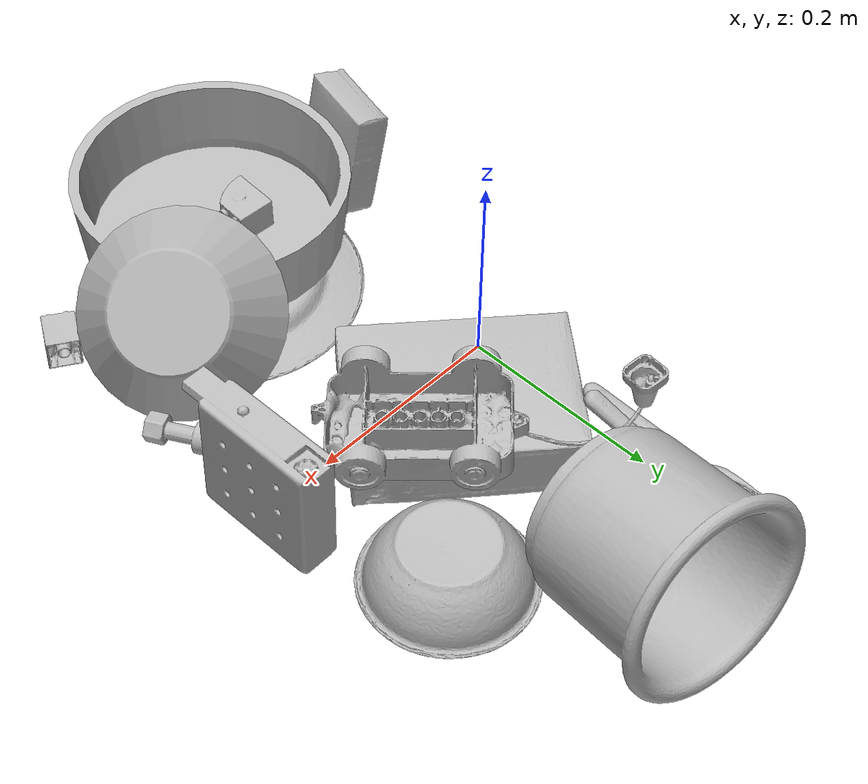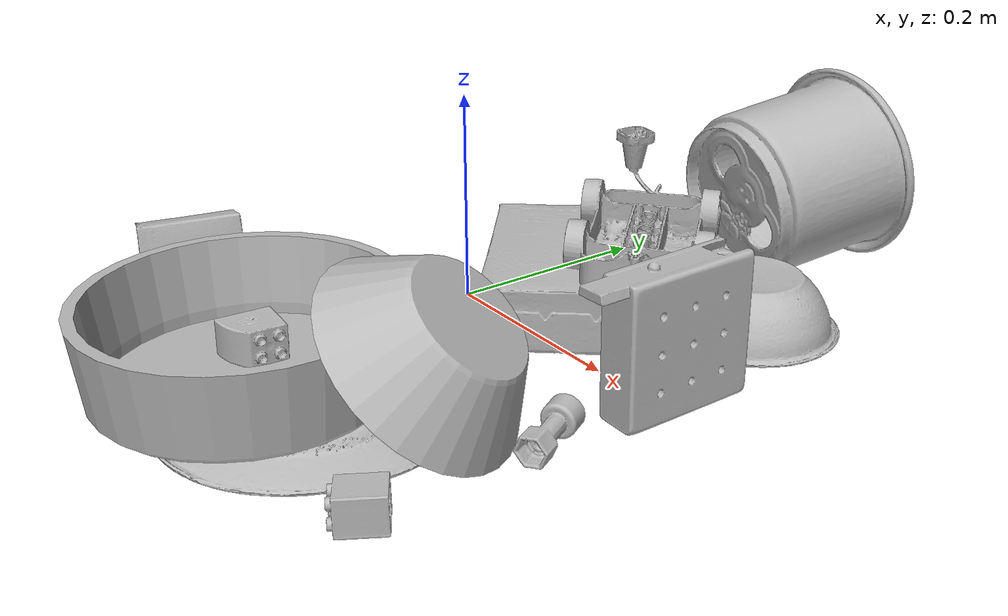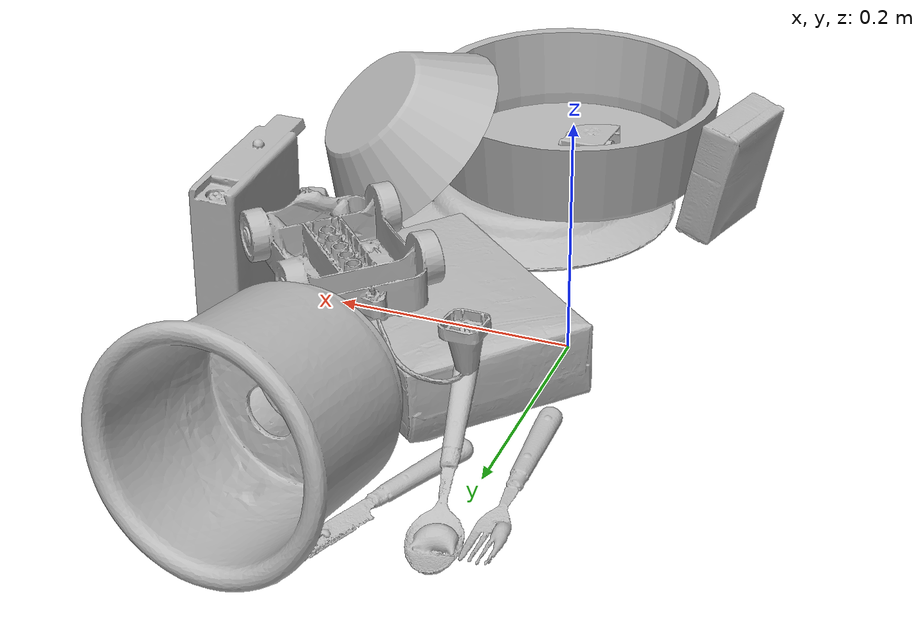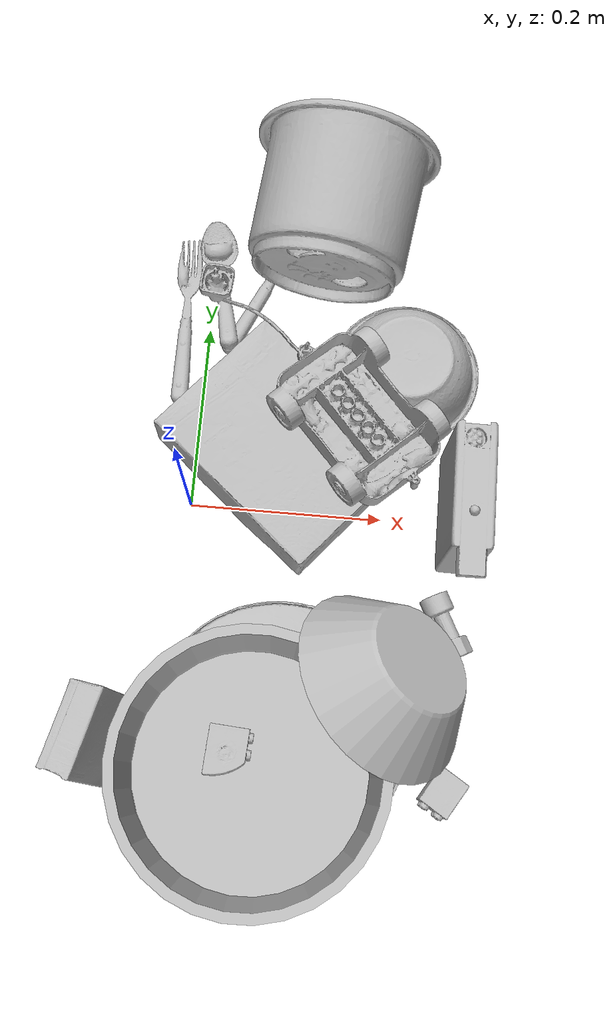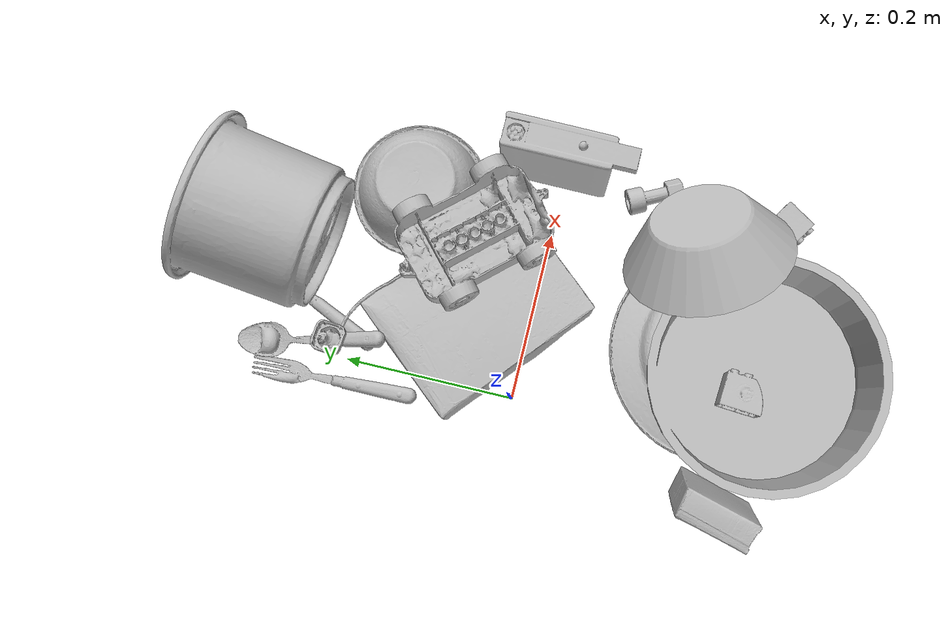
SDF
<sdf version="1.4">
  <world name="default">
    <light name="light1" type="point">
      <pose>0 0 1 0 0 0</pose>
      <diffuse>3 3 3 1</diffuse>
      <specular>3 3 3 1</specular>
    </light>
    <light name="light2" type="point">
      <pose>0 0.5 2 0 0 0</pose>
      <diffuse>1 1 1 1</diffuse>
      <specular>1 1 1 1</specular>
    </light>
    <light name="light3" type="point">
      <pose>0 0.5 2 0 0 0</pose>
      <diffuse>3 3 3 1</diffuse>
      <specular>3 3 3 1</specular>
    </light>
    <scene>
      <ambient>0.7 0.7 0.7</ambient>
    </scene>
    <model name="plate1">
      <link name="link_plate1">
        <collision name="default">
          <geometry>
            <mesh>
              <uri>model://plate/collision_meshes/collision.obj</uri>
              <scale>1.0 1.0 1.0</scale>
            </mesh>
          </geometry>
          <surface>
            <friction>
              <ode>
                <mu>0.5</mu>
                <mu2>0.5</mu2>
              </ode>
            </friction>
          <contact>
        <ode>
            <max_vel>0</max_vel>
            <min_depth>0.0001</min_depth>
            <kp>1e8</kp>
        </ode>
    </contact></surface>
        </collision>
        <visual name="default">
          <geometry>
            <mesh>
              <uri>model://plate/visual_meshes/visual.dae</uri>
              <scale>1.0 1.0 1.0</scale>
            </mesh>
          </geometry>
        </visual>
        <inertial>
          <mass>0.2518167495727539</mass>
          <pose>-0.000604460306931287 0.0002782583760563284 -0.001056198962032795 0.0022187362427659595 -0.003225514577586686 0.4526257716004426</pose>
          <inertia>
            <ixx>0.0011780038</ixx>
            <iyy>0.001166737</iyy>
            <izz>0.0023039998</izz>
            <ixy>0</ixy>
            <ixz>0</ixz>
            <iyz>0</iyz>
          </inertia>
        </inertial>
      </link>
      <pose>0.11024008691310883 -0.22467362880706787 0.013447871431708336 3.141382984330129 -0.0031916281693400855 1.2780758775587133</pose>
    </model>
    <model name="plate2">
      <link name="link_plate2">
        <collision name="default">
          <geometry>
            <mesh>
              <uri>model://pan_tefal/collision_meshes/collision.obj</uri>
              <scale>1.0 1.0 1.0</scale>
            </mesh>
          </geometry>
          <surface>
            <friction>
              <ode>
                <mu>0.5</mu>
                <mu2>0.5</mu2>
              </ode>
            </friction>
          <contact>
        <ode>
            <max_vel>0</max_vel>
            <min_depth>0.0001</min_depth>
            <kp>1e8</kp>
        </ode>
    </contact></surface>
        </collision>
        <visual name="default">
          <geometry>
            <mesh>
              <uri>model://pan_tefal/visual_meshes/visual.dae</uri>
              <scale>1.0 1.0 1.0</scale>
            </mesh>
          </geometry>
        </visual>
        <inertial>
          <mass>1.062379002571106</mass>
          <pose>-0.00018001841090153903 3.2791107514640316e-05 -0.008514937944710255 0.0008190335190592257 -0.00033013878845789875 -0.3318630487039029</pose>
          <inertia>
            <ixx>0.0073335525</ixx>
            <iyy>0.007380832</iyy>
            <izz>0.013499655</izz>
            <ixy>0</ixy>
            <ixz>0</ixz>
            <iyz>0</iyz>
          </inertia>
        </inertial>
      </link>
      <pose>0.08744204044342041 -0.2667636275291443 0.06546156108379364 9.877307822127892e-06 -0.004100552925450332 2.3245696710191246</pose>
    </model>
    <model name="bowl1">
      <link name="link_bowl1">
        <collision name="default">
          <geometry>
            <mesh>
              <uri>model://bowl/collision_meshes/collision.obj</uri>
              <scale>1.0 1.0 1.0</scale>
            </mesh>
          </geometry>
          <surface>
            <friction>
              <ode>
                <mu>0.5</mu>
                <mu2>0.5</mu2>
              </ode>
            </friction>
          <contact>
        <ode>
            <max_vel>0</max_vel>
            <min_depth>0.0001</min_depth>
            <kp>1e8</kp>
        </ode>
    </contact></surface>
        </collision>
        <visual name="default">
          <geometry>
            <mesh>
              <uri>model://bowl/visual_meshes/visual.dae</uri>
              <scale>1.0 1.0 1.0</scale>
            </mesh>
          </geometry>
        </visual>
        <inertial>
          <mass>0.06917417049407959</mass>
          <pose>0.00020445069822017103 -0.0010302119189873338 -0.0008042645640671253 -0.015764106225313407 0.014546789960746879 0.7140402093907182</pose>
          <inertia>
            <ixx>0.00015889853</ixx>
            <iyy>0.00015534814</iyy>
            <izz>0.000267322</izz>
            <ixy>0</ixy>
            <ixz>0</ixz>
            <iyz>0</iyz>
          </inertia>
        </inertial>
      </link>
      <pose>0.21660755574703217 0.16552774608135223 0.027247358113527298 -3.1327238397884214 0.0006756083401618656 1.5991000221398517</pose>
    </model>
    <model name="bowl2">
      <link name="link_bowl2">
        <collision name="default">
          <geometry>
            <mesh>
              <uri>model://bowl_a/collision_meshes/collision.obj</uri>
              <scale>1.0 1.0 1.0</scale>
            </mesh>
          </geometry>
          <surface>
            <friction>
              <ode>
                <mu>0.5</mu>
                <mu2>0.5</mu2>
              </ode>
            </friction>
          <contact>
        <ode>
            <max_vel>0</max_vel>
            <min_depth>0.0001</min_depth>
            <kp>1e8</kp>
        </ode>
    </contact></surface>
        </collision>
        <visual name="default">
          <geometry>
            <mesh>
              <uri>model://bowl_a/visual_meshes/visual.dae</uri>
              <scale>1.0 1.0 1.0</scale>
            </mesh>
          </geometry>
        </visual>
        <inertial>
          <mass>0.33581992983818054</mass>
          <pose>0.00027867587050423026 4.7312365495599806e-05 -0.0013765293406322598 -0.0009805275277335347 -0.0010938264345752996 -0.19124334191203107</pose>
          <inertia>
            <ixx>0.00095609494</ixx>
            <iyy>0.0009619646</iyy>
            <izz>0.0017004515</izz>
            <ixy>0</ixy>
            <ixz>0</ixz>
            <iyz>0</iyz>
          </inertia>
        </inertial>
      </link>
      <pose>0.22173631191253662 -0.1670704334974289 0.08885357528924942 -2.920696533592366 -0.7314366902721734 -2.8417657400917733</pose>
    </model>
    <model name="silverware1">
      <link name="link_silverware1">
        <collision name="default">
          <geometry>
            <mesh>
              <uri>model://spoon/collision_meshes/collision.obj</uri>
              <scale>1.0 1.0 1.0</scale>
            </mesh>
          </geometry>
          <surface>
            <friction>
              <ode>
                <mu>0.5</mu>
                <mu2>0.5</mu2>
              </ode>
            </friction>
          <contact>
        <ode>
            <max_vel>0</max_vel>
            <min_depth>0.0001</min_depth>
            <kp>1e8</kp>
        </ode>
    </contact></surface>
        </collision>
        <visual name="default">
          <geometry>
            <mesh>
              <uri>model://spoon/visual_meshes/visual.dae</uri>
              <scale>1.0 1.0 1.0</scale>
            </mesh>
          </geometry>
        </visual>
        <inertial>
          <mass>0.02635110728442669</mass>
          <pose>-0.005526317283511162 -0.0016034177970141172 -0.0007271651993505657 0.03521639754710896 -0.03906583271405073 0.0061506130160543454</pose>
          <inertia>
            <ixx>1.4656912e-06</ixx>
            <iyy>0.0001002651</iyy>
            <izz>0.00010098792</izz>
            <ixy>0</ixy>
            <ixz>0</ixz>
            <iyz>0</iyz>
          </inertia>
        </inertial>
      </link>
      <pose>0.009611622430384159 0.23827902972698212 0.036563895642757416 -0.036044825814656664 0.4594047484643509 1.7625857437308017</pose>
    </model>
    <model name="box1">
      <link name="link_box1">
        <collision name="default">
          <geometry>
            <mesh>
              <uri>model://cracker_box/collision_meshes/collision.obj</uri>
              <scale>1.0 1.0 1.0</scale>
            </mesh>
          </geometry>
          <surface>
            <friction>
              <ode>
                <mu>0.5</mu>
                <mu2>0.5</mu2>
              </ode>
            </friction>
          <contact>
        <ode>
            <max_vel>0</max_vel>
            <min_depth>0.0001</min_depth>
            <kp>1e8</kp>
        </ode>
    </contact></surface>
        </collision>
        <visual name="default">
          <geometry>
            <mesh>
              <uri>model://cracker_box/visual_meshes/visual.dae</uri>
              <scale>1.0 1.0 1.0</scale>
            </mesh>
          </geometry>
        </visual>
        <inertial>
          <mass>1.9942995309829712</mass>
          <pose>0.0009464178583584726 0.00025434247800149024 -0.0017029533628374338 -0.00031620747948387436 -0.011106490532043566 0.0025467943028284904</pose>
          <inertia>
            <ixx>0.005072607</ixx>
            <iyy>0.008375872</iyy>
            <izz>0.011953138</izz>
            <ixy>0</ixy>
            <ixz>0</ixz>
            <iyz>0</iyz>
          </inertia>
        </inertial>
      </link>
      <pose>0.08995506167411804 0.06100236997008324 0.035534508526325226 3.137665136481454 -0.01635526526546543 2.439071001601123</pose>
    </model>
    <model name="box2">
      <link name="link_box2">
        <collision name="default">
          <geometry>
            <mesh>
              <uri>model://pudding_box/collision_meshes/collision.obj</uri>
              <scale>1.0 1.0 1.0</scale>
            </mesh>
          </geometry>
          <surface>
            <friction>
              <ode>
                <mu>0.5</mu>
                <mu2>0.5</mu2>
              </ode>
            </friction>
          <contact>
        <ode>
            <max_vel>0</max_vel>
            <min_depth>0.0001</min_depth>
            <kp>1e8</kp>
        </ode>
    </contact></surface>
        </collision>
        <visual name="default">
          <geometry>
            <mesh>
              <uri>model://pudding_box/visual_meshes/visual.dae</uri>
              <scale>1.0 1.0 1.0</scale>
            </mesh>
          </geometry>
        </visual>
        <inertial>
          <mass>0.5201411247253418</mass>
          <pose>0.0004894821904599667 0.0008067885646596551 -0.0005188828217796981 0.00521310178321913 -0.006603799649863257 0.020079825157321304</pose>
          <inertia>
            <ixx>0.0005879929</ixx>
            <iyy>0.00039560578</iyy>
            <izz>0.00086832506</izz>
            <ixy>0</ixy>
            <ixz>0</ixz>
            <iyz>0</iyz>
          </inertia>
        </inertial>
      </link>
      <pose>-0.06654299795627594 -0.246185764670372 0.05678325891494751 1.3651205850702834 -0.00887533245517723 1.3286218495212563</pose>
    </model>
    <model name="cup1">
      <link name="link_cup1">
        <collision name="default">
          <geometry>
            <mesh>
              <uri>model://i_cups/collision_meshes/collision.obj</uri>
              <scale>2.0 2.0 2.0</scale>
            </mesh>
          </geometry>
          <surface>
            <friction>
              <ode>
                <mu>0.5</mu>
                <mu2>0.5</mu2>
              </ode>
            </friction>
          <contact>
        <ode>
            <max_vel>0</max_vel>
            <min_depth>0.0001</min_depth>
            <kp>1e8</kp>
        </ode>
    </contact></surface>
        </collision>
        <visual name="default">
          <geometry>
            <mesh>
              <uri>model://i_cups/visual_meshes/visual.dae</uri>
              <scale>2.0 2.0 2.0</scale>
            </mesh>
          </geometry>
        </visual>
        <inertial>
          <mass>0.946932315826416</mass>
          <pose>0.00022480011102743447 0.0003359477559570223 -0.0017158038681373 -0.02898277199923076 -0.03987335280003036 -0.34591530516328983</pose>
          <inertia>
            <ixx>0.005244167</ixx>
            <iyy>0.0052903723</iyy>
            <izz>0.005861205</izz>
            <ixy>0</ixy>
            <ixz>0</ixz>
            <iyz>0</iyz>
          </inertia>
        </inertial>
      </link>
      <pose>0.12721161544322968 0.3090614974498749 0.08999558538198471 1.4204177605763046 -0.5780024619283488 3.0955642818687665</pose>
    </model>
    <model name="silverware2">
      <link name="link_silverware2">
        <collision name="default">
          <geometry>
            <mesh>
              <uri>model://fork/collision_meshes/collision.obj</uri>
              <scale>1.0 1.0 1.0</scale>
            </mesh>
          </geometry>
          <surface>
            <friction>
              <ode>
                <mu>0.5</mu>
                <mu2>0.5</mu2>
              </ode>
            </friction>
          <contact>
        <ode>
            <max_vel>0</max_vel>
            <min_depth>0.0001</min_depth>
            <kp>1e8</kp>
        </ode>
    </contact></surface>
        </collision>
        <visual name="default">
          <geometry>
            <mesh>
              <uri>model://fork/visual_meshes/visual.dae</uri>
              <scale>1.0 1.0 1.0</scale>
            </mesh>
          </geometry>
        </visual>
        <inertial>
          <mass>0.03207480534911156</mass>
          <pose>-0.02957005240023136 0.00046588238910771906 0.0003218861820641905 -0.013551414501779666 -0.010977842682601763 0.014453906756127453</pose>
          <inertia>
            <ixx>1.1244033e-06</ixx>
            <iyy>8.373807e-05</iyy>
            <izz>8.424099e-05</izz>
            <ixy>0</ixy>
            <ixz>0</ixz>
            <iyz>0</iyz>
          </inertia>
        </inertial>
      </link>
      <pose>-0.027682263404130936 0.20722545683383942 0.005230692680925131 0.0209081210222506 0.051104405144112484 1.601200340842529</pose>
    </model>
    <model name="silverware3">
      <link name="link_silverware3">
        <collision name="default">
          <geometry>
            <mesh>
              <uri>model://knife/collision_meshes/collision.obj</uri>
              <scale>1.0 1.0 1.0</scale>
            </mesh>
          </geometry>
          <surface>
            <friction>
              <ode>
                <mu>0.5</mu>
                <mu2>0.5</mu2>
              </ode>
            </friction>
          <contact>
        <ode>
            <max_vel>0</max_vel>
            <min_depth>0.0001</min_depth>
            <kp>1e8</kp>
        </ode>
    </contact></surface>
        </collision>
        <visual name="default">
          <geometry>
            <mesh>
              <uri>model://knife/visual_meshes/visual.dae</uri>
              <scale>1.0 1.0 1.0</scale>
            </mesh>
          </geometry>
        </visual>
        <inertial>
          <mass>0.02260335348546505</mass>
          <pose>-0.023785259574651718 0.0015275129117071629 5.062025593360886e-05 0.073049853839256 0.017248417767033373 -0.0074098225522862896</pose>
          <inertia>
            <ixx>6.41575e-07</ixx>
            <iyy>8.6838445e-05</iyy>
            <izz>8.704508e-05</izz>
            <ixy>0</ixy>
            <ixz>0</ixz>
            <iyz>0</iyz>
          </inertia>
        </inertial>
      </link>
      <pose>0.06184382736682892 0.27101394534111023 0.005810755304992199 2.889363475940912 0.02591452231765725 1.163581373962392</pose>
    </model>
    <model name="toy1">
      <link name="link_toy1">
        <collision name="default">
          <geometry>
            <mesh>
              <uri>model://nine_hole_peg_test/collision_meshes/collision.obj</uri>
              <scale>1.0 1.0 1.0</scale>
            </mesh>
          </geometry>
          <surface>
            <friction>
              <ode>
                <mu>0.5</mu>
                <mu2>0.5</mu2>
              </ode>
            </friction>
          <contact>
        <ode>
            <max_vel>0</max_vel>
            <min_depth>0.0001</min_depth>
            <kp>1e8</kp>
        </ode>
    </contact></surface>
        </collision>
        <visual name="default">
          <geometry>
            <mesh>
              <uri>model://nine_hole_peg_test/visual_meshes/visual.dae</uri>
              <scale>1.0 1.0 1.0</scale>
            </mesh>
          </geometry>
        </visual>
        <inertial>
          <mass>0.3368244469165802</mass>
          <pose>-0.0046173869632184505 -0.009647615253925323 2.6460689696250483e-05 -0.001466679946039042 0.000719417968587533 -0.6342416610336568</pose>
          <inertia>
            <ixx>0.00052668044</ixx>
            <iyy>0.000491756</iyy>
            <izz>0.00092289934</izz>
            <ixy>0</ixy>
            <ixz>0</ixz>
            <iyz>0</iyz>
          </inertia>
        </inertial>
      </link>
      <pose>0.2791750431060791 0.0018109241500496864 0.06864648312330246 -1.5295663981846341 -1.5638013362455838 -1.6120882604357656</pose>
    </model>
    <model name="toy2">
      <link name="link_toy2">
        <collision name="default">
          <geometry>
            <mesh>
              <uri>model://c_toy_airplane/collision_meshes/collision.obj</uri>
              <scale>1.0 1.0 1.0</scale>
            </mesh>
          </geometry>
          <surface>
            <friction>
              <ode>
                <mu>0.5</mu>
                <mu2>0.5</mu2>
              </ode>
            </friction>
          <contact>
        <ode>
            <max_vel>0</max_vel>
            <min_depth>0.0001</min_depth>
            <kp>1e8</kp>
        </ode>
    </contact></surface>
        </collision>
        <visual name="default">
          <geometry>
            <mesh>
              <uri>model://c_toy_airplane/visual_meshes/visual.dae</uri>
              <scale>1.0 1.0 1.0</scale>
            </mesh>
          </geometry>
        </visual>
        <inertial>
          <mass>0.025849465280771255</mass>
          <pose>-0.000230242803809233 -4.4294804979472246e-07 -0.006080531980842352 -0.006193997552816779 -0.016797268968147806 0.7655666586292194</pose>
          <inertia>
            <ixx>1.1869546e-05</ixx>
            <iyy>1.1836047e-05</iyy>
            <izz>2.7867347e-06</izz>
            <ixy>0</ixy>
            <ixz>0</ixz>
            <iyz>0</iyz>
          </inertia>
        </inertial>
      </link>
      <pose>0.27216869592666626 -0.1086530089378357 0.014399648644030094 -1.615644006680585 0.42679249493301624 -2.6908622561322275</pose>
    </model>
    <model name="toy3">
      <link name="link_toy3">
        <collision name="default">
          <geometry>
            <mesh>
              <uri>model://g_lego_duplo/collision_meshes/collision.obj</uri>
              <scale>1.0 1.0 1.0</scale>
            </mesh>
          </geometry>
          <surface>
            <friction>
              <ode>
                <mu>0.5</mu>
                <mu2>0.5</mu2>
              </ode>
            </friction>
          <contact>
        <ode>
            <max_vel>0</max_vel>
            <min_depth>0.0001</min_depth>
            <kp>1e8</kp>
        </ode>
    </contact></surface>
        </collision>
        <visual name="default">
          <geometry>
            <mesh>
              <uri>model://g_lego_duplo/visual_meshes/visual.dae</uri>
              <scale>1.0 1.0 1.0</scale>
            </mesh>
          </geometry>
        </visual>
        <inertial>
          <mass>0.44857048988342285</mass>
          <pose>-0.05004768818616867 0.0017554624937474728 0.0038806761149317026 0.010962989380518968 0.03810827633819491 -0.09653029550410545</pose>
          <inertia>
            <ixx>0.0006499838</ixx>
            <iyy>0.00196511</iyy>
            <izz>0.0024584262</izz>
            <ixy>0</ixy>
            <ixz>0</ixz>
            <iyz>0</iyz>
          </inertia>
        </inertial>
      </link>
      <pose>0.12099206447601318 0.12135812640190125 0.09735588729381561 -3.1157328206531147 -0.04195754710902234 2.3131570720218866</pose>
    </model>
    <model name="toy4">
      <link name="link_toy4">
        <collision name="default">
          <geometry>
            <mesh>
              <uri>model://b_lego_duplo/collision_meshes/collision.obj</uri>
              <scale>1.0 1.0 1.0</scale>
            </mesh>
          </geometry>
          <surface>
            <friction>
              <ode>
                <mu>0.5</mu>
                <mu2>0.5</mu2>
              </ode>
            </friction>
          <contact>
        <ode>
            <max_vel>0</max_vel>
            <min_depth>0.0001</min_depth>
            <kp>1e8</kp>
        </ode>
    </contact></surface>
        </collision>
        <visual name="default">
          <geometry>
            <mesh>
              <uri>model://b_lego_duplo/visual_meshes/visual.dae</uri>
              <scale>1.0 1.0 1.0</scale>
            </mesh>
          </geometry>
        </visual>
        <inertial>
          <mass>0.028142115101218224</mass>
          <pose>-0.00011053047637687996 -9.15253895072965e-06 0.0019294291269034147 -0.03749502345465157 -0.02635389323626884 0.4519044936865358</pose>
          <inertia>
            <ixx>5.759495e-06</ixx>
            <iyy>5.798213e-06</iyy>
            <izz>5.1315224e-06</izz>
            <ixy>0</ixy>
            <ixz>0</ixz>
            <iyz>0</iyz>
          </inertia>
        </inertial>
      </link>
      <pose>0.2744818329811096 -0.27326565980911255 0.016216646879911423 -1.5802385016762561 0.0003272954597472627 2.5807395820047</pose>
    </model>
    <model name="toy5">
      <link name="link_toy5">
        <collision name="default">
          <geometry>
            <mesh>
              <uri>model://d_lego_duplo/collision_meshes/collision.obj</uri>
              <scale>1.0 1.0 1.0</scale>
            </mesh>
          </geometry>
          <surface>
            <friction>
              <ode>
                <mu>0.5</mu>
                <mu2>0.5</mu2>
              </ode>
            </friction>
          <contact>
        <ode>
            <max_vel>0</max_vel>
            <min_depth>0.0001</min_depth>
            <kp>1e8</kp>
        </ode>
    </contact></surface>
        </collision>
        <visual name="default">
          <geometry>
            <mesh>
              <uri>model://d_lego_duplo/visual_meshes/visual.dae</uri>
              <scale>1.0 1.0 1.0</scale>
            </mesh>
          </geometry>
        </visual>
        <inertial>
          <mass>0.03456217050552368</mass>
          <pose>0.00283056334592402 0.00016366186900995672 0.0008589798817411065 0.08010865489808279 -0.3835519084219494 0.001029683970252444</pose>
          <inertia>
            <ixx>6.6907255e-06</ixx>
            <iyy>9.495956e-06</iyy>
            <izz>9.1575175e-06</izz>
            <ixy>0</ixy>
            <ixz>0</ixz>
            <iyz>0</iyz>
          </inertia>
        </inertial>
      </link>
      <pose>0.06593139469623566 -0.2520131468772888 0.05105318874120712 1.6056016386839795 0.00023055430791050344 1.5023073030324463</pose>
    </model>
  <physics type="ode">
      <max_contacts>50</max_contacts>
      <ode>
        <solver>
          <type>quick</type>
          <iters>75</iters>
        </solver>
        <constraints>
          <contact_max_correcting_vel>0</contact_max_correcting_vel>
          <contact_surface_layer>0</contact_surface_layer>
        </constraints>
      </ode>
    </physics></world>
</sdf>
